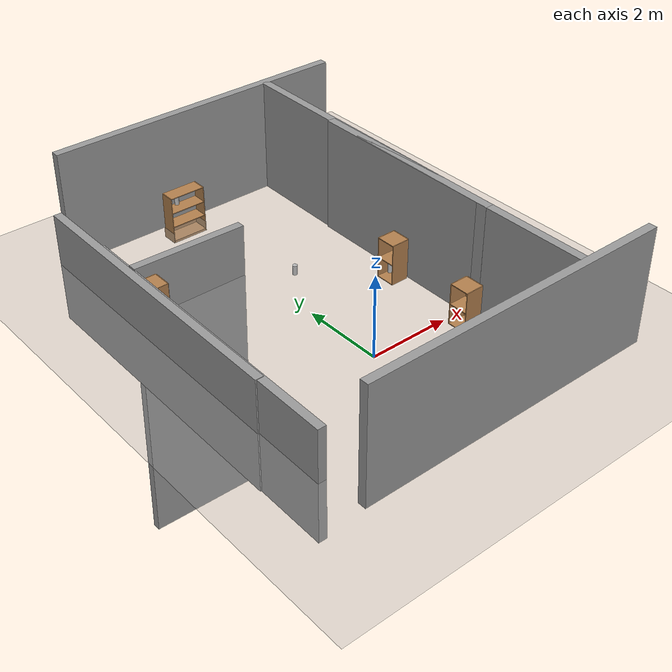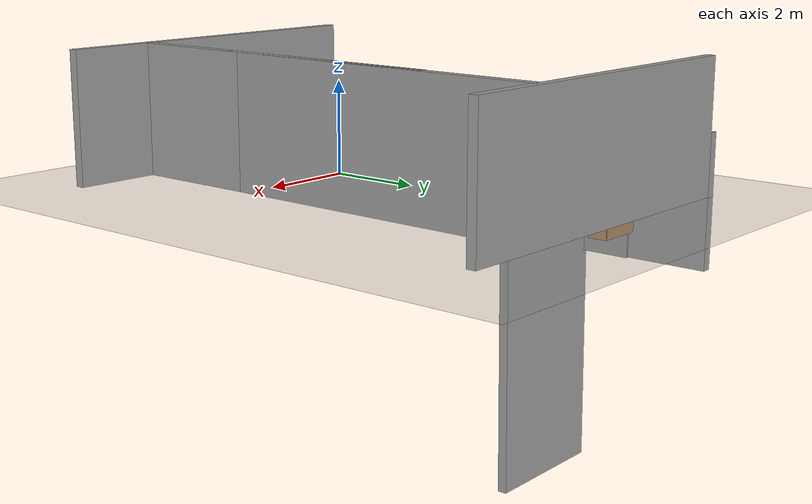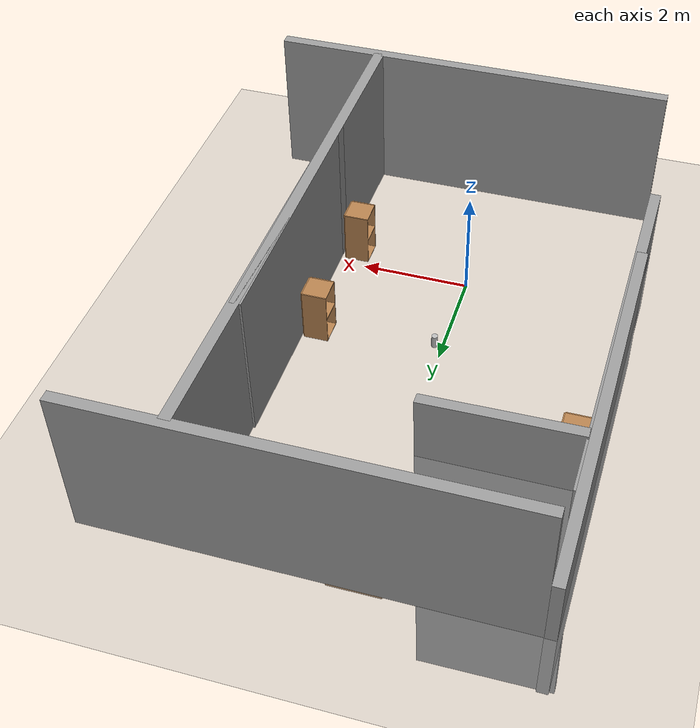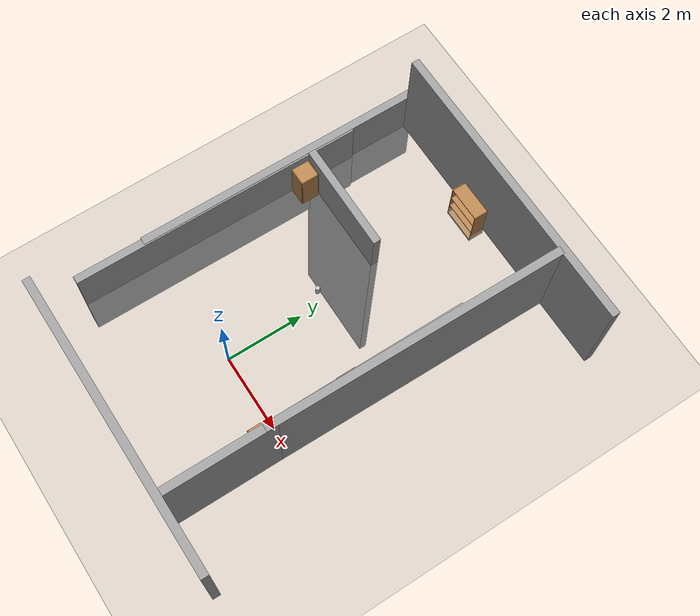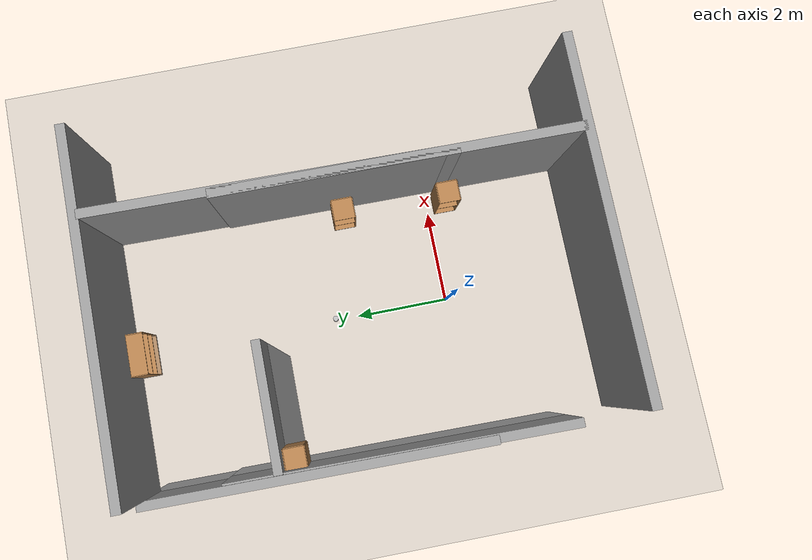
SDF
<sdf version="1.4">
 <world name="default">
  <light name="sun" type="directional">
   <pose>0 0 10 0 -0 0</pose>
   <diffuse>0.8 0.8 0.8 1</diffuse>
   <specular>0.2 0.2 0.2 1</specular>
   <attenuation>
    <range>1000</range>
    <constant>0.9</constant>
    <linear>0.01</linear>
    <quadratic>0.001</quadratic>
   </attenuation>
   <direction>0.5 0.1 -0.9</direction>
  </light>
  <scene><ambient>0.4 0.4 0.4 1</ambient><background>0.7 0.7 0.7 1</background><shadows>1</shadows></scene>
  <physics type="ode">
   <max_step_size>0.01</max_step_size>
   <real_time_factor>1</real_time_factor>
   <real_time_update_rate>100</real_time_update_rate>
   <gravity>0 0 -9.8</gravity>
  </physics>
  <model name="ground_plane_0">
   <static>1</static>
   <link name="link">
    <collision name="collision">
     <geometry><plane><normal>0 0 1</normal><size>100 100</size></plane></geometry>
     <surface><friction><ode><mu>100</mu><mu2>50</mu2></ode></friction></surface>
    </collision>
    <visual name="visual">
     <cast_shadows>0</cast_shadows>
     <geometry><plane><normal>0 0 1</normal><size>100 100</size></plane></geometry>
     <material>
      <script><uri>file://media/materials/scripts/gazebo.material</uri><name>Gazebo/Grey</name></script>
     </material>
    </visual>
    <velocity_decay><linear>0</linear><angular>0</angular></velocity_decay>
   </link>
   <pose>0.497681 0 0 0 -0 0</pose>
  </model>
  <spherical_coordinates>
   <surface_model>EARTH_WGS84</surface_model>
   <latitude_deg>0</latitude_deg>
   <longitude_deg>0</longitude_deg>
   <elevation>0</elevation>
   <heading_deg>0</heading_deg>
  </spherical_coordinates>
  <model name="grey_wall">
   <static>1</static>
   <link name="link">
    <pose>0 0 1.4 0 -0 0</pose>
    <collision name="collision"><geometry><box><size>7.5 0.2 2.8</size></box></geometry></collision>
    <visual name="visual">
     <cast_shadows>0</cast_shadows>
     <geometry><box><size>7.5 0.2 2.8</size></box></geometry>
     <material>
      <script>
       <uri>model://grey_wall/materials/scripts</uri>
       <uri>model://grey_wall/materials/textures</uri>
       <name>vrc/grey_wall</name>
      </script>
     </material>
    </visual>
    <velocity_decay><linear>0</linear><angular>0</angular></velocity_decay>
   </link>
   <pose>-0.246919 4.23073 -2.47937 0 -1.55233 0</pose>
  </model>
  <model name="grey_wall_0">
   <static>1</static>
   <link name="link">
    <pose>0 0 1.4 0 -0 0</pose>
    <collision name="collision"><geometry><box><size>7.5 0.2 2.8</size></box></geometry></collision>
    <visual name="visual">
     <cast_shadows>0</cast_shadows>
     <geometry><box><size>7.5 0.2 2.8</size></box></geometry>
     <material>
      <script>
       <uri>model://grey_wall/materials/scripts</uri>
       <uri>model://grey_wall/materials/textures</uri>
       <name>vrc/grey_wall</name>
      </script>
     </material>
    </visual>
    <velocity_decay><linear>0</linear><angular>0</angular></velocity_decay>
   </link>
   <pose>0.78338 7.06752 0 0 -0 0</pose>
  </model>
  <model name="grey_wall_1">
   <static>1</static>
   <link name="link">
    <pose>0 0 1.4 0 -0 0</pose>
    <collision name="collision"><geometry><box><size>7.5 0.2 2.8</size></box></geometry></collision>
    <visual name="visual">
     <cast_shadows>0</cast_shadows>
     <geometry><box><size>7.5 0.2 2.8</size></box></geometry>
     <material>
      <script>
       <uri>model://grey_wall/materials/scripts</uri>
       <uri>model://grey_wall/materials/textures</uri>
       <name>vrc/grey_wall</name>
      </script>
     </material>
    </visual>
    <velocity_decay><linear>0</linear><angular>0</angular></velocity_decay>
   </link>
   <pose>0.779802 -3.02841 0 0 -0 0</pose>
  </model>
  <model name="grey_wall_2">
   <static>1</static>
   <link name="link">
    <pose>0 0 1.4 0 -0 0</pose>
    <collision name="collision"><geometry><box><size>7.5 0.2 2.8</size></box></geometry></collision>
    <visual name="visual">
     <cast_shadows>0</cast_shadows>
     <geometry><box><size>7.5 0.2 2.8</size></box></geometry>
     <material>
      <script>
       <uri>model://grey_wall/materials/scripts</uri>
       <uri>model://grey_wall/materials/textures</uri>
       <name>vrc/grey_wall</name>
      </script>
     </material>
    </visual>
    <velocity_decay><linear>0</linear><angular>0</angular></velocity_decay>
   </link>
   <pose>2.65297 3.27101 0 0 0 -1.58329</pose>
  </model>
  <model name="grey_wall_3">
   <static>1</static>
   <link name="link">
    <pose>0 0 1.4 0 -0 0</pose>
    <collision name="collision"><geometry><box><size>7.5 0.2 2.8</size></box></geometry></collision>
    <visual name="visual">
     <cast_shadows>0</cast_shadows>
     <geometry><box><size>7.5 0.2 2.8</size></box></geometry>
     <material>
      <script>
       <uri>model://grey_wall/materials/scripts</uri>
       <uri>model://grey_wall/materials/textures</uri>
       <name>vrc/grey_wall</name>
      </script>
     </material>
    </visual>
    <velocity_decay><linear>0</linear><angular>0</angular></velocity_decay>
   </link>
   <pose>2.61436 0.745537 0 0 0 -1.57584</pose>
  </model>
  <model name="grey_wall_4">
   <static>1</static>
   <link name="link">
    <pose>0 0 1.4 0 -0 0</pose>
    <collision name="collision"><geometry><box><size>7.5 0.2 2.8</size></box></geometry></collision>
    <visual name="visual">
     <cast_shadows>0</cast_shadows>
     <geometry><box><size>7.5 0.2 2.8</size></box></geometry>
     <material>
      <script>
       <uri>model://grey_wall/materials/scripts</uri>
       <uri>model://grey_wall/materials/textures</uri>
       <name>vrc/grey_wall</name>
      </script>
     </material>
    </visual>
    <velocity_decay><linear>0</linear><angular>0</angular></velocity_decay>
   </link>
   <pose>-3.09121 3.41579 -1.51384 0 0 -1.57823</pose>
  </model>
  <model name="grey_wall_5">
   <static>1</static>
   <link name="link">
    <pose>0 0 1.4 0 -0 0</pose>
    <collision name="collision"><geometry><box><size>7.5 0.2 2.8</size></box></geometry></collision>
    <visual name="visual">
     <cast_shadows>0</cast_shadows>
     <geometry><box><size>7.5 0.2 2.8</size></box></geometry>
     <material>
      <script>
       <uri>model://grey_wall/materials/scripts</uri>
       <uri>model://grey_wall/materials/textures</uri>
       <name>vrc/grey_wall</name>
      </script>
     </material>
    </visual>
    <velocity_decay><linear>0</linear><angular>0</angular></velocity_decay>
   </link>
   <pose>-3.06749 1.64106 -1.52603 0 0 -1.58049</pose>
  </model>
  <model name="cabinet">
   <static>1</static>
   <link name="cabinet_bottom_plate">
    <inertial>
     <pose>0 0 -1 0 -0 0</pose>
     <inertia><ixx>2.05</ixx><ixy>0</ixy><ixz>0</ixz><iyy>2.05</iyy><iyz>0</iyz><izz>2.05</izz></inertia>
     <mass>25</mass>
    </inertial>
    <collision name="cabinet_bottom_plate_geom">
     <pose>0 0 0.01 0 -0 0</pose>
     <geometry><box><size>0.45 0.45 0.02</size></box></geometry>
    </collision>
    <visual name="cabinet_bottom_plate_geom_visual">
     <pose>0 0 0.01 0 -0 0</pose>
     <geometry><box><size>0.45 0.45 0.02</size></box></geometry>
     <material>
      <script><uri>file://media/materials/scripts/gazebo.material</uri><name>Gazebo/Wood</name></script>
     </material>
    </visual>
    <collision name="cabinet_bottom_plate_geom_cabinet_back_plate">
     <pose>0.235 0 0.51 0 -0 0</pose>
     <geometry><box><size>0.02 0.45 1.02</size></box></geometry>
    </collision>
    <visual name="cabinet_bottom_plate_geom_cabinet_back_plate_visual">
     <pose>0.235 0 0.51 0 -0 0</pose>
     <geometry><box><size>0.02 0.45 1.02</size></box></geometry>
     <material>
      <script><uri>file://media/materials/scripts/gazebo.material</uri><name>Gazebo/Wood</name></script>
     </material>
    </visual>
    <collision name="cabinet_bottom_plate_geom_cabinet_left_plate">
     <pose>0 0.235 0.51 0 -0 0</pose>
     <geometry><box><size>0.45 0.02 1.02</size></box></geometry>
    </collision>
    <visual name="cabinet_bottom_plate_geom_cabinet_left_plate_visual">
     <pose>0 0.235 0.51 0 -0 0</pose>
     <geometry><box><size>0.45 0.02 1.02</size></box></geometry>
     <material>
      <script><uri>file://media/materials/scripts/gazebo.material</uri><name>Gazebo/Wood</name></script>
     </material>
    </visual>
    <collision name="cabinet_bottom_plate_geom_cabinet_middle_plate">
     <pose>0 0 0.51 0 -0 0</pose>
     <geometry><box><size>0.45 0.45 0.02</size></box></geometry>
    </collision>
    <visual name="cabinet_bottom_plate_geom_cabinet_middle_plate_visual">
     <pose>0 0 0.51 0 -0 0</pose>
     <geometry><box><size>0.45 0.45 0.02</size></box></geometry>
     <material>
      <script><uri>file://media/materials/scripts/gazebo.material</uri><name>Gazebo/Wood</name></script>
     </material>
    </visual>
    <collision name="cabinet_bottom_plate_geom_cabinet_right_plate">
     <pose>0 -0.235 0.51 0 -0 0</pose>
     <geometry><box><size>0.45 0.02 1.02</size></box></geometry>
    </collision>
    <visual name="cabinet_bottom_plate_geom_cabinet_right_plate_visual">
     <pose>0 -0.235 0.51 0 -0 0</pose>
     <geometry><box><size>0.45 0.02 1.02</size></box></geometry>
     <material>
      <script><uri>file://media/materials/scripts/gazebo.material</uri><name>Gazebo/Wood</name></script>
     </material>
    </visual>
    <collision name="cabinet_bottom_plate_geom_cabinet_top_plate">
     <pose>0 0 1.01 0 -0 0</pose>
     <geometry><box><size>0.45 0.45 0.02</size></box></geometry>
    </collision>
    <visual name="cabinet_bottom_plate_geom_cabinet_top_plate_visual">
     <pose>0 0 1.01 0 -0 0</pose>
     <geometry><box><size>0.45 0.45 0.02</size></box></geometry>
     <material>
      <script><uri>file://media/materials/scripts/gazebo.material</uri><name>Gazebo/Wood</name></script>
     </material>
    </visual>
    <velocity_decay><linear>0</linear><angular>0</angular></velocity_decay>
   </link>
   <pose>2.25299 1.9161 0 0 -0 0</pose>
  </model>
  <model name="bookshelf_0">
   <static>1</static>
   <link name="link">
    <inertial><mass>1</mass></inertial>
    <collision name="back">
     <pose>0 0.005 0.6 0 -0 0</pose>
     <geometry><box><size>0.9 0.01 1.2</size></box></geometry>
    </collision>
    <visual name="visual1">
     <pose>0 0.005 0.6 0 -0 0</pose>
     <geometry><box><size>0.9 0.01 1.2</size></box></geometry>
     <material>
      <script><uri>file://media/materials/scripts/gazebo.material</uri><name>Gazebo/Wood</name></script>
     </material>
    </visual>
    <collision name="left_side">
     <pose>0.45 -0.195 0.6 0 -0 0</pose>
     <geometry><box><size>0.02 0.4 1.2</size></box></geometry>
    </collision>
    <visual name="visual2">
     <pose>0.45 -0.195 0.6 0 -0 0</pose>
     <geometry><box><size>0.02 0.4 1.2</size></box></geometry>
     <material>
      <script><uri>file://media/materials/scripts/gazebo.material</uri><name>Gazebo/Wood</name></script>
     </material>
    </visual>
    <collision name="right_side">
     <pose>-0.45 -0.195 0.6 0 -0 0</pose>
     <geometry><box><size>0.02 0.4 1.2</size></box></geometry>
    </collision>
    <visual name="visual3">
     <pose>-0.45 -0.195 0.6 0 -0 0</pose>
     <geometry><box><size>0.02 0.4 1.2</size></box></geometry>
     <material>
      <script><uri>file://media/materials/scripts/gazebo.material</uri><name>Gazebo/Wood</name></script>
     </material>
    </visual>
    <collision name="bottom">
     <pose>0 -0.195 0.03 0 -0 0</pose>
     <geometry><box><size>0.88 0.4 0.06</size></box></geometry>
    </collision>
    <visual name="visual4">
     <pose>0 -0.195 0.03 0 -0 0</pose>
     <geometry><box><size>0.88 0.4 0.06</size></box></geometry>
     <material>
      <script><uri>file://media/materials/scripts/gazebo.material</uri><name>Gazebo/Wood</name></script>
     </material>
    </visual>
    <collision name="top">
     <pose>0 -0.195 1.19 0 -0 0</pose>
     <geometry><box><size>0.88 0.4 0.02</size></box></geometry>
    </collision>
    <visual name="visual5">
     <pose>0 -0.195 1.19 0 -0 0</pose>
     <geometry><box><size>0.88 0.4 0.02</size></box></geometry>
     <material>
      <script><uri>file://media/materials/scripts/gazebo.material</uri><name>Gazebo/Wood</name></script>
     </material>
    </visual>
    <collision name="low_shelf">
     <pose>0 -0.195 0.43 0 -0 0</pose>
     <geometry><box><size>0.88 0.4 0.02</size></box></geometry>
    </collision>
    <visual name="visual6">
     <pose>0 -0.195 0.43 0 -0 0</pose>
     <geometry><box><size>0.88 0.4 0.02</size></box></geometry>
     <material>
      <script><uri>file://media/materials/scripts/gazebo.material</uri><name>Gazebo/Wood</name></script>
     </material>
    </visual>
    <collision name="high_shelf">
     <pose>0 -0.195 0.8 0 -0 0</pose>
     <geometry><box><size>0.88 0.4 0.02</size></box></geometry>
    </collision>
    <visual name="visual7">
     <pose>0 -0.195 0.8 0 -0 0</pose>
     <geometry><box><size>0.88 0.4 0.02</size></box></geometry>
     <material>
      <script><uri>file://media/materials/scripts/gazebo.material</uri><name>Gazebo/Wood</name></script>
     </material>
    </visual>
    <velocity_decay><linear>0</linear><angular>0</angular></velocity_decay>
   </link>
   <pose>0 7 -0.279163 0 -0 0</pose>
  </model>
  <model name="cabinet_0">
   <static>1</static>
   <link name="cabinet_bottom_plate">
    <inertial>
     <pose>0 0 -1 0 -0 0</pose>
     <inertia><ixx>2.05</ixx><ixy>0</ixy><ixz>0</ixz><iyy>2.05</iyy><iyz>0</iyz><izz>2.05</izz></inertia>
     <mass>25</mass>
    </inertial>
    <collision name="cabinet_bottom_plate_geom">
     <pose>0 0 0.01 0 -0 0</pose>
     <geometry><box><size>0.45 0.45 0.02</size></box></geometry>
    </collision>
    <visual name="cabinet_bottom_plate_geom_visual">
     <pose>0 0 0.01 0 -0 0</pose>
     <geometry><box><size>0.45 0.45 0.02</size></box></geometry>
     <material>
      <script><uri>file://media/materials/scripts/gazebo.material</uri><name>Gazebo/Wood</name></script>
     </material>
    </visual>
    <collision name="cabinet_bottom_plate_geom_cabinet_back_plate">
     <pose>0.235 0 0.51 0 -0 0</pose>
     <geometry><box><size>0.02 0.45 1.02</size></box></geometry>
    </collision>
    <visual name="cabinet_bottom_plate_geom_cabinet_back_plate_visual">
     <pose>0.235 0 0.51 0 -0 0</pose>
     <geometry><box><size>0.02 0.45 1.02</size></box></geometry>
     <material>
      <script><uri>file://media/materials/scripts/gazebo.material</uri><name>Gazebo/Wood</name></script>
     </material>
    </visual>
    <collision name="cabinet_bottom_plate_geom_cabinet_left_plate">
     <pose>0 0.235 0.51 0 -0 0</pose>
     <geometry><box><size>0.45 0.02 1.02</size></box></geometry>
    </collision>
    <visual name="cabinet_bottom_plate_geom_cabinet_left_plate_visual">
     <pose>0 0.235 0.51 0 -0 0</pose>
     <geometry><box><size>0.45 0.02 1.02</size></box></geometry>
     <material>
      <script><uri>file://media/materials/scripts/gazebo.material</uri><name>Gazebo/Wood</name></script>
     </material>
    </visual>
    <collision name="cabinet_bottom_plate_geom_cabinet_middle_plate">
     <pose>0 0 0.51 0 -0 0</pose>
     <geometry><box><size>0.45 0.45 0.02</size></box></geometry>
    </collision>
    <visual name="cabinet_bottom_plate_geom_cabinet_middle_plate_visual">
     <pose>0 0 0.51 0 -0 0</pose>
     <geometry><box><size>0.45 0.45 0.02</size></box></geometry>
     <material>
      <script><uri>file://media/materials/scripts/gazebo.material</uri><name>Gazebo/Wood</name></script>
     </material>
    </visual>
    <collision name="cabinet_bottom_plate_geom_cabinet_right_plate">
     <pose>0 -0.235 0.51 0 -0 0</pose>
     <geometry><box><size>0.45 0.02 1.02</size></box></geometry>
    </collision>
    <visual name="cabinet_bottom_plate_geom_cabinet_right_plate_visual">
     <pose>0 -0.235 0.51 0 -0 0</pose>
     <geometry><box><size>0.45 0.02 1.02</size></box></geometry>
     <material>
      <script><uri>file://media/materials/scripts/gazebo.material</uri><name>Gazebo/Wood</name></script>
     </material>
    </visual>
    <collision name="cabinet_bottom_plate_geom_cabinet_top_plate">
     <pose>0 0 1.01 0 -0 0</pose>
     <geometry><box><size>0.45 0.45 0.02</size></box></geometry>
    </collision>
    <visual name="cabinet_bottom_plate_geom_cabinet_top_plate_visual">
     <pose>0 0 1.01 0 -0 0</pose>
     <geometry><box><size>0.45 0.45 0.02</size></box></geometry>
     <material>
      <script><uri>file://media/materials/scripts/gazebo.material</uri><name>Gazebo/Wood</name></script>
     </material>
    </visual>
    <velocity_decay><linear>0</linear><angular>0</angular></velocity_decay>
   </link>
   <pose>-2.73191 3.86912 0 0 -0 0</pose>
  </model>
  <model name="cabinet_1">
   <static>1</static>
   <link name="cabinet_bottom_plate">
    <inertial>
     <pose>0 0 -1 0 -0 0</pose>
     <inertia><ixx>2.05</ixx><ixy>0</ixy><ixz>0</ixz><iyy>2.05</iyy><iyz>0</iyz><izz>2.05</izz></inertia>
     <mass>25</mass>
    </inertial>
    <collision name="cabinet_bottom_plate_geom">
     <pose>0 0 0.01 0 -0 0</pose>
     <geometry><box><size>0.45 0.45 0.02</size></box></geometry>
    </collision>
    <visual name="cabinet_bottom_plate_geom_visual">
     <pose>0 0 0.01 0 -0 0</pose>
     <geometry><box><size>0.45 0.45 0.02</size></box></geometry>
     <material>
      <script><uri>file://media/materials/scripts/gazebo.material</uri><name>Gazebo/Wood</name></script>
     </material>
    </visual>
    <collision name="cabinet_bottom_plate_geom_cabinet_back_plate">
     <pose>0.235 0 0.51 0 -0 0</pose>
     <geometry><box><size>0.02 0.45 1.02</size></box></geometry>
    </collision>
    <visual name="cabinet_bottom_plate_geom_cabinet_back_plate_visual">
     <pose>0.235 0 0.51 0 -0 0</pose>
     <geometry><box><size>0.02 0.45 1.02</size></box></geometry>
     <material>
      <script><uri>file://media/materials/scripts/gazebo.material</uri><name>Gazebo/Wood</name></script>
     </material>
    </visual>
    <collision name="cabinet_bottom_plate_geom_cabinet_left_plate">
     <pose>0 0.235 0.51 0 -0 0</pose>
     <geometry><box><size>0.45 0.02 1.02</size></box></geometry>
    </collision>
    <visual name="cabinet_bottom_plate_geom_cabinet_left_plate_visual">
     <pose>0 0.235 0.51 0 -0 0</pose>
     <geometry><box><size>0.45 0.02 1.02</size></box></geometry>
     <material>
      <script><uri>file://media/materials/scripts/gazebo.material</uri><name>Gazebo/Wood</name></script>
     </material>
    </visual>
    <collision name="cabinet_bottom_plate_geom_cabinet_middle_plate">
     <pose>0 0 0.51 0 -0 0</pose>
     <geometry><box><size>0.45 0.45 0.02</size></box></geometry>
    </collision>
    <visual name="cabinet_bottom_plate_geom_cabinet_middle_plate_visual">
     <pose>0 0 0.51 0 -0 0</pose>
     <geometry><box><size>0.45 0.45 0.02</size></box></geometry>
     <material>
      <script><uri>file://media/materials/scripts/gazebo.material</uri><name>Gazebo/Wood</name></script>
     </material>
    </visual>
    <collision name="cabinet_bottom_plate_geom_cabinet_right_plate">
     <pose>0 -0.235 0.51 0 -0 0</pose>
     <geometry><box><size>0.45 0.02 1.02</size></box></geometry>
    </collision>
    <visual name="cabinet_bottom_plate_geom_cabinet_right_plate_visual">
     <pose>0 -0.235 0.51 0 -0 0</pose>
     <geometry><box><size>0.45 0.02 1.02</size></box></geometry>
     <material>
      <script><uri>file://media/materials/scripts/gazebo.material</uri><name>Gazebo/Wood</name></script>
     </material>
    </visual>
    <collision name="cabinet_bottom_plate_geom_cabinet_top_plate">
     <pose>0 0 1.01 0 -0 0</pose>
     <geometry><box><size>0.45 0.45 0.02</size></box></geometry>
    </collision>
    <visual name="cabinet_bottom_plate_geom_cabinet_top_plate_visual">
     <pose>0 0 1.01 0 -0 0</pose>
     <geometry><box><size>0.45 0.45 0.02</size></box></geometry>
     <material>
      <script><uri>file://media/materials/scripts/gazebo.material</uri><name>Gazebo/Wood</name></script>
     </material>
    </visual>
    <velocity_decay><linear>0</linear><angular>0</angular></velocity_decay>
   </link>
   <pose>2.20497 -0.392451 0 0 -0 0</pose>
  </model>
  <model name="beer_0">
   <link name="link">
    <pose>0 0 0.115 0 -0 0</pose>
    <inertial>
     <mass>0.39</mass>
     <inertia><ixx>0.00058</ixx><ixy>0</ixy><ixz>0</ixz><iyy>0.00058</iyy><iyz>0</iyz><izz>0.00019</izz></inertia>
    </inertial>
    <collision name="collision">
     <geometry><cylinder><radius>0.055</radius><length>0.23</length></cylinder></geometry>
    </collision>
    <visual name="visual">
     <geometry><cylinder><radius>0.055</radius><length>0.23</length></cylinder></geometry>
     <material>
      <script>
       <uri>model://beer/materials/scripts</uri>
       <uri>model://beer/materials/textures</uri>
       <name>Beer/Diffuse</name>
      </script>
     </material>
    </visual>
    <velocity_decay><linear>0</linear><angular>0</angular></velocity_decay>
   </link>
   <pose>-0.040864 2.50347 0.775059 0.001076 -0.000123 -0.818705</pose>
   <static>0</static>
  </model>
  <model name="beer_2">
   <link name="link">
    <pose>0 0 0.115 0 -0 0</pose>
    <inertial>
     <mass>0.39</mass>
     <inertia><ixx>0.00058</ixx><ixy>0</ixy><ixz>0</ixz><iyy>0.00058</iyy><iyz>0</iyz><izz>0.00019</izz></inertia>
    </inertial>
    <collision name="collision">
     <geometry><cylinder><radius>0.055</radius><length>0.23</length></cylinder></geometry>
    </collision>
    <visual name="visual">
     <geometry><cylinder><radius>0.055</radius><length>0.23</length></cylinder></geometry>
     <material>
      <script>
       <uri>model://beer/materials/scripts</uri>
       <uri>model://beer/materials/textures</uri>
       <name>Beer/Diffuse</name>
      </script>
     </material>
    </visual>
    <velocity_decay><linear>0</linear><angular>0</angular></velocity_decay>
   </link>
   <pose>2.34391 2.08604 0.019164 -0.000796 3.2e-05 -1.17414</pose>
   <static>0</static>
  </model>
  <model name="beer_3">
   <link name="link">
    <pose>0 0 0.115 0 -0 0</pose>
    <inertial>
     <mass>0.39</mass>
     <inertia><ixx>0.00058</ixx><ixy>0</ixy><ixz>0</ixz><iyy>0.00058</iyy><iyz>0</iyz><izz>0.00019</izz></inertia>
    </inertial>
    <collision name="collision">
     <geometry><cylinder><radius>0.055</radius><length>0.23</length></cylinder></geometry>
    </collision>
    <visual name="visual">
     <geometry><cylinder><radius>0.055</radius><length>0.23</length></cylinder></geometry>
     <material>
      <script>
       <uri>model://beer/materials/scripts</uri>
       <uri>model://beer/materials/textures</uri>
       <name>Beer/Diffuse</name>
      </script>
     </material>
    </visual>
    <velocity_decay><linear>0</linear><angular>0</angular></velocity_decay>
   </link>
   <pose>-0.116239 6.91249 0.52997 -0.000223 2e-06 -1.36706</pose>
   <static>0</static>
  </model>
 </world>
</sdf>
